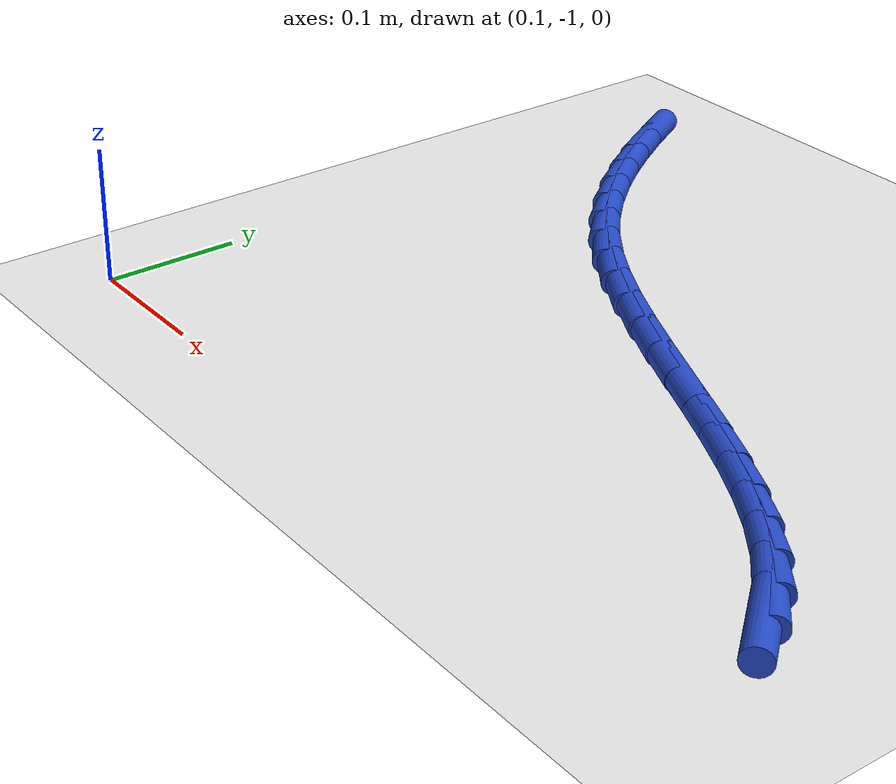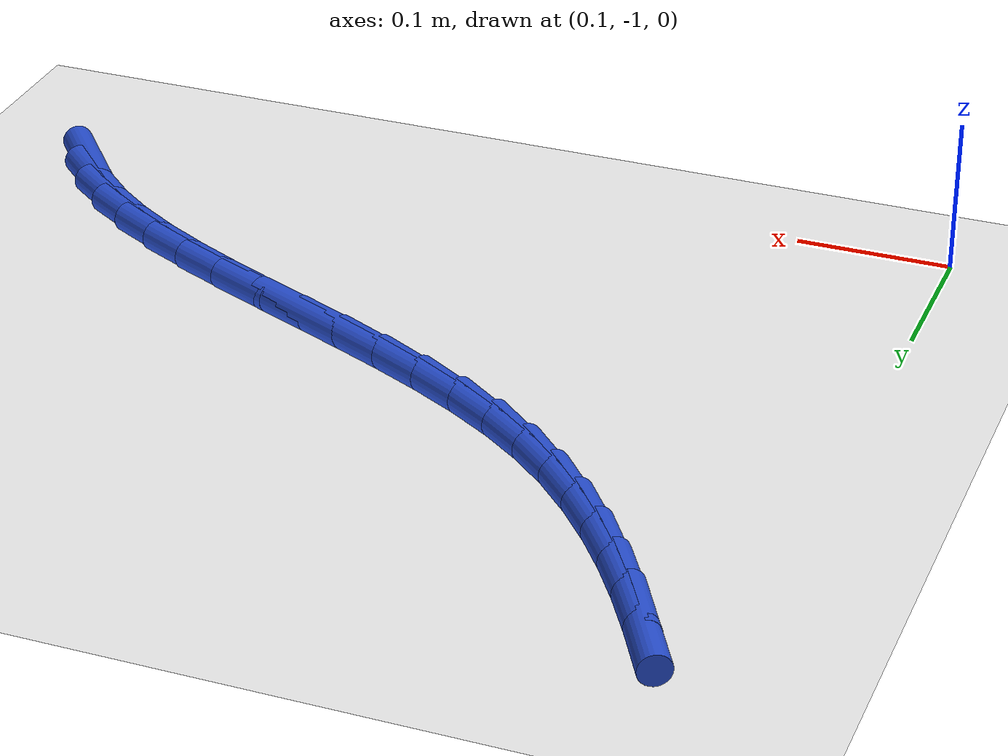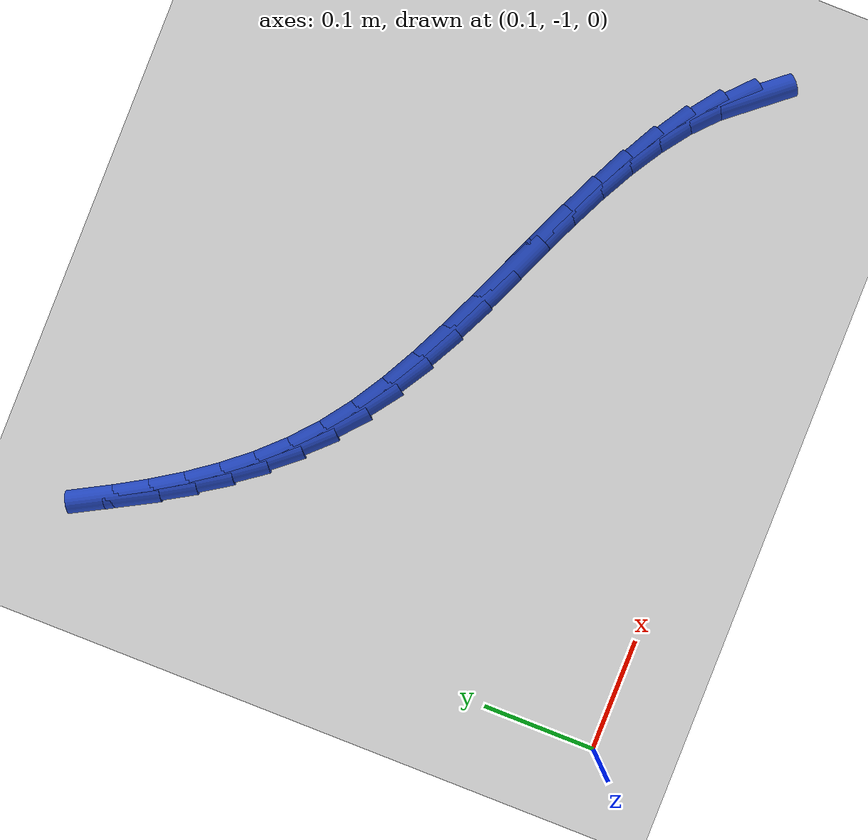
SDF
<sdf version="1.6">
 <world name="default">
  <model name="ground_plane">
   <static>1</static>
   <link name="link">
    <collision name="collision">
     <geometry><plane><normal>0 0 1</normal><size>100 100</size></plane></geometry>
     <surface><friction><ode><mu>100</mu><mu2>50</mu2></ode></friction></surface>
    </collision>
    <visual name="visual">
     <cast_shadows>0</cast_shadows>
     <geometry><plane><normal>0 0 1</normal><size>100 100</size></plane></geometry>
     <material>
      <script><uri>file://media/materials/scripts/gazebo.material</uri><name>Gazebo/WhiteGlow</name></script>
     </material>
    </visual>
   </link>
  </model>
  <model name="line">
   <link name="link_212">
    <pose>0.666844286985116 -0.9183508407832786 0.01 0 1.57 -0.8843385117347765</pose>
    <collision name="collision">
     <geometry><cylinder><radius>0.01</radius><length>0.08</length></cylinder></geometry>
    </collision>
    <visual name="visual">
     <material>
      <script><name>Gazebo/Blue</name><uri>file://media/materials/scripts/gazebo.material</uri></script>
     </material>
     <geometry><cylinder><radius>0.01</radius><length>0.08</length></cylinder></geometry>
    </visual>
   </link>
   <link name="link_213">
    <pose>0.6487058420164394 -0.8962145451895689 0.01 0 1.57 -0.748795141760576</pose>
    <collision name="collision">
     <geometry><cylinder><radius>0.01</radius><length>0.08</length></cylinder></geometry>
    </collision>
    <visual name="visual">
     <material>
      <script><name>Gazebo/Blue</name><uri>file://media/materials/scripts/gazebo.material</uri></script>
     </material>
     <geometry><cylinder><radius>0.01</radius><length>0.08</length></cylinder></geometry>
    </visual>
   </link>
   <link name="link_214">
    <pose>0.6271778201593835 -0.8762075112045176 0.01 0 1.57 -0.6396486798499139</pose>
    <collision name="collision">
     <geometry><cylinder><radius>0.01</radius><length>0.08</length></cylinder></geometry>
    </collision>
    <visual name="visual">
     <material>
      <script><name>Gazebo/Blue</name><uri>file://media/materials/scripts/gazebo.material</uri></script>
     </material>
     <geometry><cylinder><radius>0.01</radius><length>0.08</length></cylinder></geometry>
    </visual>
   </link>
   <link name="link_215">
    <pose>0.6027197099675835 -0.8580107287769773 0.01 0 1.57 -0.5552569701584441</pose>
    <collision name="collision">
     <geometry><cylinder><radius>0.01</radius><length>0.08</length></cylinder></geometry>
    </collision>
    <visual name="visual">
     <material>
      <script><name>Gazebo/Blue</name><uri>file://media/materials/scripts/gazebo.material</uri></script>
     </material>
     <geometry><cylinder><radius>0.01</radius><length>0.08</length></cylinder></geometry>
    </visual>
   </link>
   <link name="link_216">
    <pose>0.5757909999946746 -0.8413051878558009 0.01 0 1.57 -0.4926098422825793</pose>
    <collision name="collision">
     <geometry><cylinder><radius>0.01</radius><length>0.08</length></cylinder></geometry>
    </collision>
    <visual name="visual">
     <material>
      <script><name>Gazebo/Blue</name><uri>file://media/materials/scripts/gazebo.material</uri></script>
     </material>
     <geometry><cylinder><radius>0.01</radius><length>0.08</length></cylinder></geometry>
    </visual>
   </link>
   <link name="link_217">
    <pose>0.5468511787942921 -0.8257718783898409 0.01 0 1.57 -0.4486973185396661</pose>
    <collision name="collision">
     <geometry><cylinder><radius>0.01</radius><length>0.08</length></cylinder></geometry>
    </collision>
    <visual name="visual">
     <material>
      <script><name>Gazebo/Blue</name><uri>file://media/materials/scripts/gazebo.material</uri></script>
     </material>
     <geometry><cylinder><radius>0.01</radius><length>0.08</length></cylinder></geometry>
    </visual>
   </link>
   <link name="link_218">
    <pose>0.5163597349200713 -0.8110917903279503 0.01 0 1.57 -0.42109543635855157</pose>
    <collision name="collision">
     <geometry><cylinder><radius>0.01</radius><length>0.08</length></cylinder></geometry>
    </collision>
    <visual name="visual">
     <material>
      <script><name>Gazebo/Blue</name><uri>file://media/materials/scripts/gazebo.material</uri></script>
     </material>
     <geometry><cylinder><radius>0.01</radius><length>0.08</length></cylinder></geometry>
    </visual>
   </link>
   <link name="link_219">
    <pose>0.48477615692564724 -0.7969459136189817 0.01 0 1.57 -0.4081317265095405</pose>
    <collision name="collision">
     <geometry><cylinder><radius>0.01</radius><length>0.08</length></cylinder></geometry>
    </collision>
    <visual name="visual">
     <material>
      <script><name>Gazebo/Blue</name><uri>file://media/materials/scripts/gazebo.material</uri></script>
     </material>
     <geometry><cylinder><radius>0.01</radius><length>0.08</length></cylinder></geometry>
    </visual>
   </link>
   <link name="link_220">
    <pose>0.45255993336465533 -0.7830152382117878 0.01 0 1.57 -0.40888406839458447</pose>
    <collision name="collision">
     <geometry><cylinder><radius>0.01</radius><length>0.08</length></cylinder></geometry>
    </collision>
    <visual name="visual">
     <material>
      <script><name>Gazebo/Blue</name><uri>file://media/materials/scripts/gazebo.material</uri></script>
     </material>
     <geometry><cylinder><radius>0.01</radius><length>0.08</length></cylinder></geometry>
    </visual>
   </link>
   <link name="link_221">
    <pose>0.4201705527907308 -0.7689807540552216 0.01 0 1.57 -0.42313704505484157</pose>
    <collision name="collision">
     <geometry><cylinder><radius>0.01</radius><length>0.08</length></cylinder></geometry>
    </collision>
    <visual name="visual">
     <material>
      <script><name>Gazebo/Blue</name><uri>file://media/materials/scripts/gazebo.material</uri></script>
     </material>
     <geometry><cylinder><radius>0.01</radius><length>0.08</length></cylinder></geometry>
    </visual>
   </link>
   <link name="link_222">
    <pose>0.3880675037575088 -0.7545234510981356 0.01 0 1.57 -0.45134016808328814</pose>
    <collision name="collision">
     <geometry><cylinder><radius>0.01</radius><length>0.08</length></cylinder></geometry>
    </collision>
    <visual name="visual">
     <material>
      <script><name>Gazebo/Blue</name><uri>file://media/materials/scripts/gazebo.material</uri></script>
     </material>
     <geometry><cylinder><radius>0.01</radius><length>0.08</length></cylinder></geometry>
    </visual>
   </link>
   <link name="link_223">
    <pose>0.35671027481862466 -0.7393243192893826 0.01 0 1.57 -0.4945664785462382</pose>
    <collision name="collision">
     <geometry><cylinder><radius>0.01</radius><length>0.08</length></cylinder></geometry>
    </collision>
    <visual name="visual">
     <material>
      <script><name>Gazebo/Blue</name><uri>file://media/materials/scripts/gazebo.material</uri></script>
     </material>
     <geometry><cylinder><radius>0.01</radius><length>0.08</length></cylinder></geometry>
    </visual>
   </link>
   <link name="link_224">
    <pose>0.3265583545277134 -0.7230643485778151 0.01 0 1.57 -0.5544327009144094</pose>
    <collision name="collision">
     <geometry><cylinder><radius>0.01</radius><length>0.08</length></cylinder></geometry>
    </collision>
    <visual name="visual">
     <material>
      <script><name>Gazebo/Blue</name><uri>file://media/materials/scripts/gazebo.material</uri></script>
     </material>
     <geometry><cylinder><radius>0.01</radius><length>0.08</length></cylinder></geometry>
    </visual>
   </link>
   <link name="link_225">
    <pose>0.2980712314384105 -0.7054245289122862 0.01 0 1.57 -0.6327210373363253</pose>
    <collision name="collision">
     <geometry><cylinder><radius>0.01</radius><length>0.08</length></cylinder></geometry>
    </collision>
    <visual name="visual">
     <material>
      <script><name>Gazebo/Blue</name><uri>file://media/materials/scripts/gazebo.material</uri></script>
     </material>
     <geometry><cylinder><radius>0.01</radius><length>0.08</length></cylinder></geometry>
    </visual>
   </link>
   <link name="link_226">
    <pose>0.2717036161505913 -0.6860894048050125 0.01 0 1.57 -0.7210847971624185</pose>
    <collision name="collision">
     <geometry><cylinder><radius>0.01</radius><length>0.08</length></cylinder></geometry>
    </collision>
    <visual name="visual">
     <material>
      <script><name>Gazebo/Blue</name><uri>file://media/materials/scripts/gazebo.material</uri></script>
     </material>
     <geometry><cylinder><radius>0.01</radius><length>0.08</length></cylinder></geometry>
    </visual>
   </link>
   <link name="link_227">
    <pose>0.24764418982575326 -0.6649414336285967 0.01 0 1.57 -0.8036483396475205</pose>
    <collision name="collision">
     <geometry><cylinder><radius>0.01</radius><length>0.08</length></cylinder></geometry>
    </collision>
    <visual name="visual">
     <material>
      <script><name>Gazebo/Blue</name><uri>file://media/materials/scripts/gazebo.material</uri></script>
     </material>
     <geometry><cylinder><radius>0.01</radius><length>0.08</length></cylinder></geometry>
    </visual>
   </link>
   <link name="link_228">
    <pose>0.2256807415921679 -0.6421613167751206 0.01 0 1.57 -0.8775112822065126</pose>
    <collision name="collision">
     <geometry><cylinder><radius>0.01</radius><length>0.08</length></cylinder></geometry>
    </collision>
    <visual name="visual">
     <material>
      <script><name>Gazebo/Blue</name><uri>file://media/materials/scripts/gazebo.material</uri></script>
     </material>
     <geometry><cylinder><radius>0.01</radius><length>0.08</length></cylinder></geometry>
    </visual>
   </link>
   <link name="link_229">
    <pose>0.2055678800152498 -0.6179544403487951 0.01 0 1.57 -0.9416299116502238</pose>
    <collision name="collision">
     <geometry><cylinder><radius>0.01</radius><length>0.08</length></cylinder></geometry>
    </collision>
    <visual name="visual">
     <material>
      <script><name>Gazebo/Blue</name><uri>file://media/materials/scripts/gazebo.material</uri></script>
     </material>
     <geometry><cylinder><radius>0.01</radius><length>0.08</length></cylinder></geometry>
    </visual>
   </link>
   <link name="link_230">
    <pose>0.18706021366041384 -0.5925261904538316 0.01 0 1.57 -0.9955089289398309</pose>
    <collision name="collision">
     <geometry><cylinder><radius>0.01</radius><length>0.08</length></cylinder></geometry>
    </collision>
    <visual name="visual">
     <material>
      <script><name>Gazebo/Blue</name><uri>file://media/materials/scripts/gazebo.material</uri></script>
     </material>
     <geometry><cylinder><radius>0.01</radius><length>0.08</length></cylinder></geometry>
    </visual>
   </link>
   <link name="link_231">
    <pose>0.16991235109307454 -0.5660819531944409 0.01 0 1.57 -1.039039760691202</pose>
    <collision name="collision">
     <geometry><cylinder><radius>0.01</radius><length>0.08</length></cylinder></geometry>
    </collision>
    <visual name="visual">
     <material>
      <script><name>Gazebo/Blue</name><uri>file://media/materials/scripts/gazebo.material</uri></script>
     </material>
     <geometry><cylinder><radius>0.01</radius><length>0.08</length></cylinder></geometry>
    </visual>
   </link>
   <link name="link_232">
    <pose>0.15387890087864664 -0.5388271146748339 0.01 0 1.57 -1.0723342502568778</pose>
    <collision name="collision">
     <geometry><cylinder><radius>0.01</radius><length>0.08</length></cylinder></geometry>
    </collision>
    <visual name="visual">
     <material>
      <script><name>Gazebo/Blue</name><uri>file://media/materials/scripts/gazebo.material</uri></script>
     </material>
     <geometry><cylinder><radius>0.01</radius><length>0.08</length></cylinder></geometry>
    </visual>
   </link>
  </model>
 </world>
</sdf>
